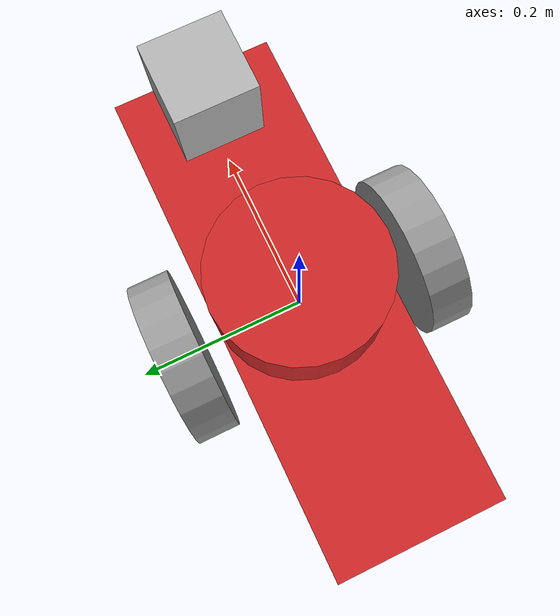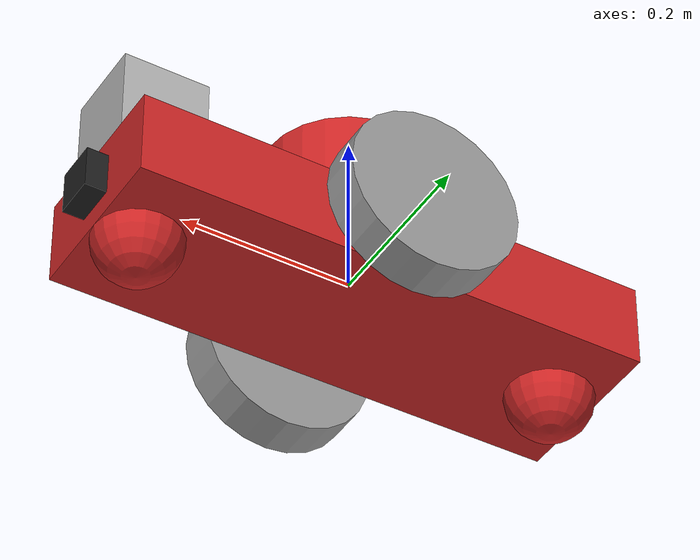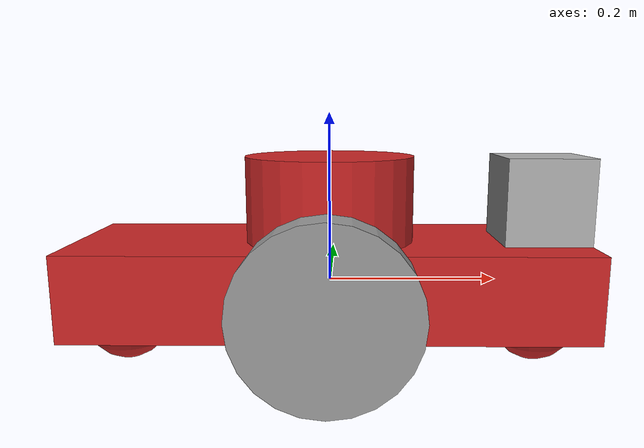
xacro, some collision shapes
<?xml version="1.0" ?>

<robot name="my_robot"
  xmlns:xacro="http://www.ros.org/wiki/xacro">

  <!-- just testing property feature of xacro -->
  <xacro:property name="wheel_thickness" value="0.15" />
  <xacro:property name="wheel_radius" value="0.1" />

  <xacro:include filename="$(find my_robot)/urdf/my_robot.gazebo" />
  <link name="robot_footprint"></link>

  <joint name="robot_footprint_joint" type="fixed">
    <origin xyz="0 0 0" rpy="0 0 0" />
    <parent link="robot_footprint" />
    <child link="chassis" />
  </joint>

  <joint type="continuous" name="right_wheel_hinge">
    <origin xyz="0 -0.15 0" rpy="0 0 0" />
    <child link="right_wheel" />
    <parent link="chassis" />
    <axis xyz="0 1 0" rpy="0 0 0" />
    <limit effort="10000" velocity="1000" />
    <dynamics damping="1.0" friction="1.0" />
  </joint>

  <joint type="continuous" name="left_wheel_hinge">
    <origin xyz="0 0.15 0" rpy="0 0 0" />
    <child link="left_wheel" />
    <parent link="chassis" />
    <axis xyz="0 1 0" rpy="0 0 0" />
    <limit effort="10000" velocity="1000" />
    <dynamics damping="1.0" friction="1.0" />
  </joint>
  <joint type="fixed" name="tower_joint">
    <origin xyz="0 0 0.1" rpy="0 0 0" />
    <child link="tower" />
    <parent link="chassis" />
    <axis xyz="0 1 0" rpy="0 0 0" />
  </joint>

  <joint name="camera_optical_joint" type="fixed">
    <origin xyz="0 0 0" rpy="0 0 0"/>
    <parent link="camera"/>
    <child link="camera_link_optical"/>
  </joint>

  <joint type="fixed" name="camera_joint">
    <origin xyz="0.3 0 0" rpy="0 0 0" />
    <child link="camera" />
    <parent link="chassis" />
    <axis xyz="0 1 0" rpy="0 0 0" />
  </joint>

  <joint type="fixed" name="hokuyo_joint">
    <origin xyz="0.25 0 0.1" rpy="0 0 0" />
    <child link="hokuyo" />
    <parent link="chassis" />
    <axis xyz="0 1 0" rpy="0 0 0" />
  </joint>
  <link name="chassis">
    <pose>0 0 0.1 0 0 0</pose>

    <inertial>
      <mass value="15.0" />
      <origin xyz="0.0 0 0" rpy=" 0 0 0" />
      <inertia ixx="0.1" ixy="0" ixz="0" iyy="0.1" iyz="0" izz="0.1" />
    </inertial>

    <collision name="collision">
      <origin xyz="0 0 0" rpy=" 0 0 0" />
      <geometry>
        <box size=".6 .2 .1" />
      </geometry>
    </collision>

    <visual name="chassis_visual">
      <origin xyz="0 0 0" rpy=" 0 0 0" />
      <geometry>
        <box size=".6 .2 .1" />
      </geometry>
    </visual>

    <collision name="back_caster_collision">
      <origin xyz="-0.25 0 -0.05" rpy=" 0 0 0" />
      <geometry>
        <sphere radius="0.0499" />
      </geometry>
    </collision>

    <visual name="back_caster_visual">
      <origin xyz="-0.25 0 -0.05" rpy=" 0 0 0" />
      <geometry>
        <sphere radius="0.05" />
      </geometry>
    </visual>

    <collision name="front_caster_collision">
      <origin xyz="0.25 0 -0.05" rpy=" 0 0 0" />
      <geometry>
        <sphere radius="0.0499" />
      </geometry>
    </collision>

    <visual name="front_caster_visual">
      <origin xyz="0.25 0 -0.05" rpy=" 0 0 0" />
      <geometry>
        <sphere radius="0.05" />
      </geometry>
    </visual>
  </link>

  <link name="tower">
    <inertial>
      <mass value="1.0" />
      <origin xyz="0.0 0 0" rpy=" 0 0 0" />
      <inertia ixx="0.1" ixy="0" ixz="0" iyy="0.1" iyz="0" izz="0.1" />
    </inertial>
    <visual name="tower_visual">
      <origin xyz="0 0 0" rpy=" 0 0 0" />
      <geometry>
        <cylinder radius="${wheel_radius}" length="0.1" />
      </geometry>
    </visual>

    <collision name="tower_collision">
      <origin xyz="0 0 0" rpy=" 0 0 0" />
      <geometry>
        <cylinder radius="0.1" length="0.1" />
      </geometry>
    </collision>
  </link>

  <link name="right_wheel">
    <inertial>
      <mass value="15.0" />
      <origin xyz="0.0 0 0" rpy=" 0 0 0" />
      <inertia ixx="0.1" ixy="0" ixz="0" iyy="0.1" iyz="0" izz="0.1" />
    </inertial>
    <visual name="right_wheel_visual">
      <origin xyz="0 0 0" rpy=" 0 1.5707 1.5707" />
      <geometry>
        <cylinder radius="${wheel_radius}" length="0.05" />
      </geometry>
    </visual>

    <collision name="right_wheel_collision">
      <origin xyz="0 0 0" rpy=" 0 1.5707 1.5707" />
      <geometry>
        <cylinder radius="0.1" length="0.05" />
      </geometry>
    </collision>
  </link>
  <link name="left_wheel">
    <inertial>
      <mass value="15.0" />
      <origin xyz="0.0 0 0" rpy=" 0 0 0" />
      <inertia ixx="0.0" ixy="0" ixz="0" iyy="0.0" iyz="0" izz="0.0" />
    </inertial>

    <visual name="left_wheel_visual">
      <origin xyz="0 0 0" rpy=" 0 1.5707 1.5707" />
      <geometry>
        <cylinder radius="0.1" length="0.05" />
      </geometry>
    </visual>

    <collision name="left_wheel_collision">
      <origin xyz="0 0 0" rpy=" 0 1.5707 1.5707" />
      <geometry>
        <cylinder radius="0.1" length="0.05" />
      </geometry>
    </collision>
  </link>

  <link name="camera_link_optical">
  </link>

  <link name="camera">
    <inertial>
      <mass value="0.1" />
      <box_inertia m="0.1" x="0.05" y="0.05" z="0.05" />
      <inertia ixx="1e-6" ixy="0" ixz="0" iyy="1e-6" iyz="0" izz="1e-6" />
    </inertial>
    <visual name="camera">
      <origin xyz="0 0 0" rpy="0 0 0" />
      <geometry>
        <box size=".05 .05 .05" />
      </geometry>
    </visual>
    <collision name="camera">
      <origin xyz="0 0 0" rpy=" 0 0 0" />
      <geometry>
        <box size=".05 .05 .05" />
      </geometry>
    </collision>
  </link>

  <link name="hokuyo">
    <origin xyz="0 0 0" rpy=" 0 0 0" />
    <inertial>
      <mass value="1e-5" />
      <inertia ixx="1e-6" ixy="0" ixz="0" iyy="1e-6" iyz="0" izz="1e-6" />
    </inertial>
    <collision name="hokuyo">
      <geometry>
        <box size=".1 .1 .1" />
      </geometry>
    </collision>
    <visual name="hokuyo">
      <geometry>
        <mesh filename="package://my_robot/meshes/hokuyo.dae" />
      </geometry>
    </visual>
  </link>
  <gazebo reference="left_wheel">
    <material>Gazebo/Gray</material>
  </gazebo>

  <gazebo reference="right_wheel">
    <material>Gazebo/Gray</material>
  </gazebo>

  <gazebo reference="chassis">
    <material>Gazebo/Red</material>
  </gazebo>
  <gazebo reference="tower">
    <material>Gazebo/Red</material>
  </gazebo>
  <gazebo reference="camera">
    <material>Gazebo/Black</material>
  </gazebo>
</robot>
